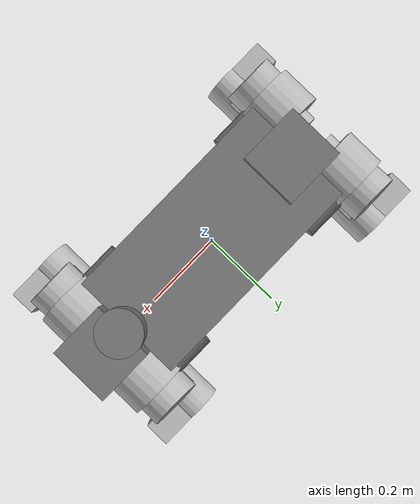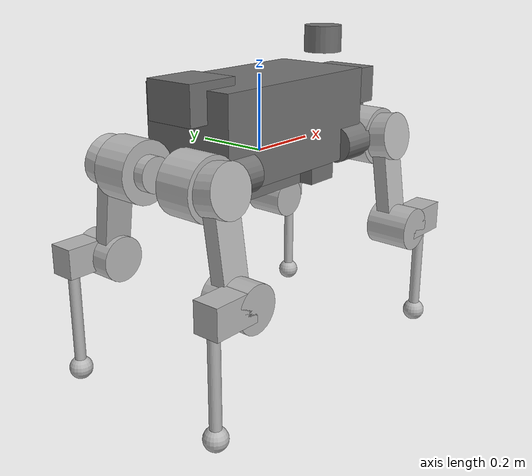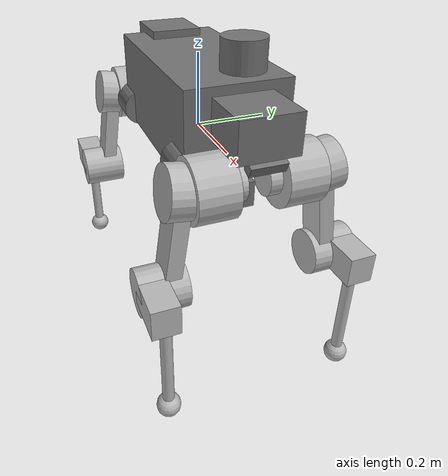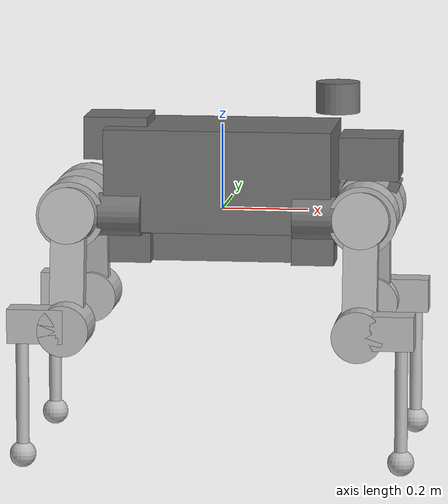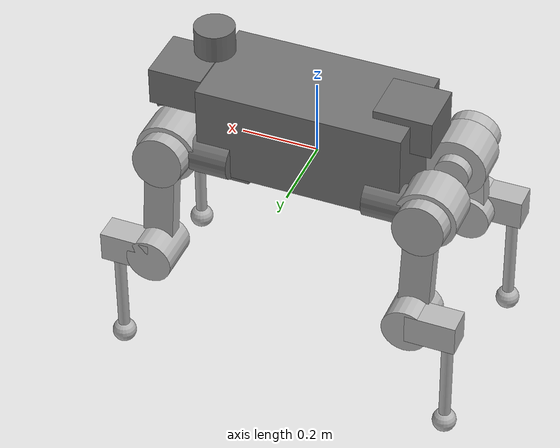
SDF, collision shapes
<sdf version="1.6">
  <model name="cerberus_anymal_b_sensor_config_1">
    <link name="base">
      <pose>0 0 0 0 -0 0</pose>
      <gravity>1</gravity>
      <velocity_decay/>
      <inertial>
        <pose>-0.001799 -0.001412 0.050337 0 -0 0</pose>
        <mass>23.32578</mass>
        <inertia>
          <ixx>0.30242793077</ixx>
          <ixy>-0.00184980716</ixy>
          <ixz>-0.00398797474</ixz>
          <iyy>0.88931002497</iyy>
          <iyz>-0.00192099149</iyz>
          <izz>0.86742722698</izz>
        </inertia>
      </inertial>
      <collision name="base_collision">
        <pose>0 0 0.08 0 -0 0</pose>
        <geometry>
          <box>
            <size>0.531 0.27 0.24</size>
          </box>
        </geometry>
      </collision>
      <collision name="base_collision_1">
        <pose>0.227 0.116 0 3.14159 1.57079 3.14159</pose>
        <geometry>
          <cylinder>
            <length>0.1</length>
            <radius>0.05</radius>
          </cylinder>
        </geometry>
      </collision>
      <collision name="base_collision_2">
        <pose>0.227 -0.116 0 3.14159 1.57079 3.14159</pose>
        <geometry>
          <cylinder>
            <length>0.1</length>
            <radius>0.05</radius>
          </cylinder>
        </geometry>
      </collision>
      <collision name="base_collision_3">
        <pose>-0.227 0.116 0 3.14159 1.57079 3.14159</pose>
        <geometry>
          <cylinder>
            <length>0.1</length>
            <radius>0.05</radius>
          </cylinder>
        </geometry>
      </collision>
      <collision name="base_collision_4">
        <pose>-0.227 -0.116 0 3.14159 1.57079 3.14159</pose>
        <geometry>
          <cylinder>
            <length>0.1</length>
            <radius>0.05</radius>
          </cylinder>
        </geometry>
      </collision>
      <collision name="base_collision_5">
        <pose>0.2155 0 -0.09 0 -0 0</pose>
        <geometry>
          <box>
            <size>0.1 0.1 0.07</size>
          </box>
        </geometry>
      </collision>
      <collision name="base_collision_6">
        <pose>-0.2155 0 -0.09 0 -0 0</pose>
        <geometry>
          <box>
            <size>0.1 0.1 0.07</size>
          </box>
        </geometry>
      </collision>
      <collision name="base_collision_7">
        <pose>0 0 -0.09 0 -0 0</pose>
        <geometry>
          <box>
            <size>0.531 0.02 0.07</size>
          </box>
        </geometry>
      </collision>
      <collision name="base_fixed_joint_lump__jetson_case_collision_8">
        <pose>-0.245 0 0.171 0 0 -1.5708</pose>
        <geometry>
          <box>
            <size>0.14 0.15 0.1</size>
          </box>
        </geometry>
      </collision>
      <collision name="base_fixed_joint_lump__sensor_head_collision_9">
        <pose>0.3482 0 0.131624 0 -0 0</pose>
        <geometry>
          <box>
            <size>0.14 0.15 0.1</size>
          </box>
        </geometry>
      </collision>
      <collision name="base_fixed_joint_lump__downward_realsense_camera_collision_10">
        <pose>0.405017 -0.000105 0.06461 -0.009501 0.382227 0</pose>
        <geometry>
          <box>
            <size>0.025 0.089 0.025</size>
          </box>
        </geometry>
      </collision>
      <collision name="base_fixed_joint_lump__velodyne_axis_aligned_collision_11">
        <pose>0.27 0 0.2676 0 -0 0</pose>
        <geometry>
          <cylinder>
            <length>0.0717</length>
            <radius>0.0516</radius>
          </cylinder>
        </geometry>
      </collision>
      <visual name="base_visual">
        <pose>0 0 0 0 -0 0</pose>
        <geometry>
          <mesh>
            <scale>0.001 0.001 0.001</scale>
            <uri>meshes/anymal_base.dae</uri>
          </mesh>
        </geometry>
      </visual>
      <visual name="base_fixed_joint_lump__jetson_case_visual_1">
        <pose>-0.245 0 0.201 0 0 -1.5708</pose>
        <geometry>
          <mesh>
            <scale>0.001 0.001 0.001</scale>
            <uri>meshes/darpa_jetson_back.stl</uri>
          </mesh>
        </geometry>
        <material>
          <ambient>0.8 0.8 0.8 1</ambient>
          <diffuse>0.45 0.45 0.45 1</diffuse>
          <specular>0.8 0.8 0.8 1.0</specular>
        </material>
      </visual>
      <visual name="base_fixed_joint_lump__sensor_head_visual_2">
        <pose>0.3482 0 0.161624 0 -0 0</pose>
        <geometry>
          <mesh>
            <scale>0.001 0.001 0.001</scale>
            <uri>meshes/darpa_head_1.stl</uri>
          </mesh>
        </geometry>
        <material>
          <ambient>0.8 0.8 0.8 1</ambient>
          <diffuse>0.45 0.45 0.45 1</diffuse>
          <specular>0.8 0.8 0.8 1.0</specular>
        </material>
      </visual>
      <visual name="base_fixed_joint_lump__downward_realsense_camera_visual_3">
        <pose>0.387757 -0.000224 0.057675 -0.009501 0.382227 0</pose>
        <geometry>
          <mesh>
            <scale>0.001 0.001 0.001</scale>
            <uri>meshes/realsense_d435.dae</uri>
          </mesh>
        </geometry>
      </visual>
      <visual name="base_fixed_joint_lump__velodyne_axis_aligned_visual_4">
        <pose>0.27 0 0.2299 0 -0 0</pose>
        <geometry>
          <mesh>
            <scale>1 1 1</scale>
            <uri>meshes/VLP16_base_1.dae</uri>
          </mesh>
        </geometry>
      </visual>
      <visual name="base_fixed_joint_lump__velodyne_axis_aligned_visual_5">
        <pose>0.27 0 0.2299 0 -0 0</pose>
        <geometry>
          <mesh>
            <scale>1 1 1</scale>
            <uri>meshes/VLP16_base_2.dae</uri>
          </mesh>
        </geometry>
      </visual>
      <visual name="base_fixed_joint_lump__velodyne_visual_6">
        <pose>0.27 0 0.2299 0 -0 0</pose>
        <geometry>
          <mesh>
            <scale>1 1 1</scale>
            <uri>meshes/VLP16_scan.dae</uri>
          </mesh>
        </geometry>
      </visual>
      <visual name="base_fixed_joint_lump__light_back_left_visual_7">
        <pose>-0.206 0.12 0.14 3.14159 1.57079 1.5692</pose>
        <geometry>
          <cylinder>
            <length>0.005</length>
            <radius>0.019</radius>
          </cylinder>
        </geometry>
      </visual>
      <visual name="base_fixed_joint_lump__light_back_right_visual_8">
        <pose>-0.206 -0.12 0.14 3.14159 1.57079 -1.57239</pose>
        <geometry>
          <cylinder>
            <length>0.005</length>
            <radius>0.019</radius>
          </cylinder>
        </geometry>
      </visual>
      <visual name="base_fixed_joint_lump__light_front_left_visual_9">
        <pose>0.305 0.045 0.33 -3.14159 1.57079 0.436332</pose>
        <geometry>
          <cylinder>
            <length>0.005</length>
            <radius>0.019</radius>
          </cylinder>
        </geometry>
      </visual>
      <visual name="base_fixed_joint_lump__light_front_right_visual_10">
        <pose>0.305 -0.045 0.33 3.14159 1.57079 -0.436332</pose>
        <geometry>
          <cylinder>
            <length>0.005</length>
            <radius>0.019</radius>
          </cylinder>
        </geometry>
      </visual>

      <sensor name="imu_sensor" type="imu">
        <always_on>1</always_on>
        <update_rate>400</update_rate>
        <imu>
                    <enable_orientation>0</enable_orientation>
                    <angular_velocity>
                        <x>
                            <noise type="gaussian">
                                <mean>0</mean>
                                <stddev>0.009</stddev>
                                <bias_mean>0.00075</bias_mean>
                                <bias_stddev>0.005</bias_stddev>
                                <dynamic_bias_stddev>0.00002</dynamic_bias_stddev>
                                <dynamic_bias_correlation_time>400.0</dynamic_bias_correlation_time>
                                <precision>0.00025</precision>
                            </noise>
                        </x>
                        <y>
                            <noise type="gaussian">
                                <mean>0</mean>
                                <stddev>0.009</stddev>
                                <bias_mean>0.00075</bias_mean>
                                <bias_stddev>0.005</bias_stddev>
                                <dynamic_bias_stddev>0.00002</dynamic_bias_stddev>
                                <dynamic_bias_correlation_time>400.0</dynamic_bias_correlation_time>
                                <precision>0.00025</precision>
                            </noise>
                        </y>
                        <z>
                            <noise type="gaussian">
                                <mean>0</mean>
                                <stddev>0.009</stddev>
                                <bias_mean>0.00075</bias_mean>
                                <bias_stddev>0.005</bias_stddev>
                                <dynamic_bias_stddev>0.00002</dynamic_bias_stddev>
                                <dynamic_bias_correlation_time>400.0</dynamic_bias_correlation_time>
                                <precision>0.00025</precision>
                            </noise>
                        </z>
                    </angular_velocity>
                    <linear_acceleration>
                        <x>
                            <noise type="gaussian">
                                <mean>0</mean>
                                <stddev>0.021</stddev>
                                <bias_mean>0.05</bias_mean>
                                <bias_stddev>0.0075</bias_stddev>
                                <dynamic_bias_stddev>0.000375</dynamic_bias_stddev>
                                <dynamic_bias_correlation_time>175.0</dynamic_bias_correlation_time>
                                <precision>0.005</precision>
                            </noise>
                        </x>
                        <y>
                            <noise type="gaussian">
                                <mean>0</mean>
                                <stddev>0.021</stddev>
                                <bias_mean>0.05</bias_mean>
                                <bias_stddev>0.0075</bias_stddev>
                                <dynamic_bias_stddev>0.000375</dynamic_bias_stddev>
                                <dynamic_bias_correlation_time>175.0</dynamic_bias_correlation_time>
                                <precision>0.005</precision>
                            </noise>
                        </y>
                        <z>
                            <noise type="gaussian">
                                <mean>0</mean>
                                <stddev>0.021</stddev>
                                <bias_mean>0.05</bias_mean>
                                <bias_stddev>0.0075</bias_stddev>
                                <dynamic_bias_stddev>0.000375</dynamic_bias_stddev>
                                <dynamic_bias_correlation_time>175.0</dynamic_bias_correlation_time>
                                <precision>0.005</precision>
                            </noise>
                        </z>
                    </linear_acceleration>
                </imu>
      </sensor>

      <sensor name="front_laser" type="gpu_lidar">
        <visualize>0</visualize>
        <update_rate>10</update_rate>
        <lidar>
          <scan>
            <horizontal>
              <samples>1800</samples>
              <resolution>1</resolution>
              <min_angle>-3.14159</min_angle>
              <max_angle>3.14159</max_angle>
            </horizontal>
            <vertical>
              <samples>16</samples>
              <resolution>1</resolution>
              <min_angle>-0.261799</min_angle>
              <max_angle>0.261799</max_angle>
            </vertical>
          </scan>
          <range>
            <min>0.05</min>
            <max>100</max>
            <resolution>0.01</resolution>
          </range>
          <noise>
            <type>gaussian</type>
            <mean>0</mean>
            <stddev>0.01</stddev>
          </noise>
        </lidar>
        <pose frame="">0.27 0 0.2676 0 -0 0</pose>
      </sensor>

      <sensor name="downward_realsense" type="rgbd_camera">
        <camera name="camera_down">
            <horizontal_fov>1.0472</horizontal_fov>
            <lens>
                <intrinsics>
                    <!-- fx = fy = width / ( 2 * tan (hfov / 2 ) ) -->
                    <fx>277.1</fx>
                    <fy>277.1</fy>
                    <!-- cx = ( width + 1 ) / 2 -->
                    <cx>160.5</cx>
                    <!-- cy = ( height + 1 ) / 2 -->
                    <cy>120.5</cy>
                    <s>0</s>
                </intrinsics>
            </lens>
            <distortion>
                <k1>0.0</k1>
                <k2>0.0</k2>
                <k3>0.0</k3>
                <p1>0.0</p1>
                <p2>0.0</p2>
                <center>0.5 0.5</center>
            </distortion>
            <image>
                <width>320</width>
                <height>240</height>
                <format>R8G8B8</format>
            </image>
            <clip>
                <near>0.01</near>
                <far>300</far>
            </clip>
            <depth_camera>
              <clip>
                <near>0.1</near>
                <far>10</far>
              </clip>
            </depth_camera>
            <noise>
                <type>gaussian</type>
                <mean>0</mean>
                <stddev>0.007</stddev>
            </noise>
        </camera>
        <always_on>1</always_on>
        <update_rate>10</update_rate>
        <visualize>0</visualize>
        <pose frame="">0.388757 -0.000224 0.0576 -0.009501 0.38227 0</pose>
      </sensor>

      <sensor name="camera_front" type="camera">
          <pose>0.42 0.02 0.161624 0 0 0</pose>
          <always_on>1</always_on>
          <update_rate>20</update_rate>
          <camera name="camera_front">
              <horizontal_fov>2</horizontal_fov>
              <lens>
                <intrinsics>
                  <fx>1108.952913</fx>
                  <fy>1110.658360</fy>
                  <cx>729.533992</cx>
                  <cy>544.985715</cy>
                  <s>1</s>
                </intrinsics>
              </lens>
              <distortion>
                  <k1>0.0</k1>
                  <k2>0.0</k2>
                  <k3>0.0</k3>
                  <p1>0.0</p1>
                  <p2>0.0</p2>
                  <center>0.5 0.5</center>
              </distortion>
              <image>
                <width>1440</width>
                <height>1080</height>
                <format>R8G8B8</format>
              </image>
              <clip>
                  <near>0.02</near>
                  <far>100</far>
              </clip>
              <noise>
                <type>gaussian</type>
                <mean>0</mean>
                <stddev>0.007</stddev>
              </noise>
          </camera>
      </sensor>

      <sensor name="camera_back_right" type="camera">
          <pose>-0.311374 -0.152675 0.136916 0 0 -1.5707963267948966</pose>
          <always_on>1</always_on>
          <update_rate>20</update_rate>
          <camera name="camera_back_right">
            <horizontal_fov>2</horizontal_fov>
            <lens>
              <intrinsics>
                <fx>1108.952913</fx>
                <fy>1110.658360</fy>
                <cx>729.533992</cx>
                <cy>544.985715</cy>
                <s>1</s>
              </intrinsics>
            </lens>
            <distortion>
                <k1>0.0</k1>
                <k2>0.0</k2>
                <k3>0.0</k3>
                <p1>0.0</p1>
                <p2>0.0</p2>
                <center>0.5 0.5</center>
            </distortion>
            <image>
              <width>1440</width>
              <height>1080</height>
              <format>R8G8B8</format>
            </image>
            <clip>
                <near>0.02</near>
                <far>100</far>
            </clip>
            <noise>
              <type>gaussian</type>
              <mean>0</mean>
              <stddev>0.007</stddev>
            </noise>
          </camera>
      </sensor>

      <sensor name="camera_back_left" type="camera">
          <pose>-0.310417 0.158145 0.139186 0 0 1.5707963267948966</pose>
          <always_on>1</always_on>
          <update_rate>20</update_rate>
          <camera name="camera_back_left">
            <horizontal_fov>2</horizontal_fov>
            <lens>
              <intrinsics>
                <fx>1108.952913</fx>
                <fy>1110.658360</fy>
                <cx>729.533992</cx>
                <cy>544.985715</cy>
                <s>1</s>
              </intrinsics>
            </lens>
            <distortion>
                <k1>0.0</k1>
                <k2>0.0</k2>
                <k3>0.0</k3>
                <p1>0.0</p1>
                <p2>0.0</p2>
                <center>0.5 0.5</center>
            </distortion>
            <image>
              <width>1440</width>
              <height>1080</height>
              <format>R8G8B8</format>
            </image>
            <clip>
                <near>0.02</near>
                <far>100</far>
            </clip>
            <noise>
              <type>gaussian</type>
              <mean>0</mean>
              <stddev>0.007</stddev>
            </noise>
          </camera>
      </sensor>

      <light name="light_front_right" type="spot">
        <pose frame="">0.305 -0.045 0.33 3.14159 1.56859 -0.436332</pose>
        <attenuation>
          <range>50</range>
          <linear>0</linear>
          <constant>0.1</constant>
          <quadratic>0.0025</quadratic>
        </attenuation>
        <diffuse>0.8 0.8 0.5 1</diffuse>
        <specular>0.8 0.8 0.5 1</specular>
        <spot>
          <inner_angle>1.2</inner_angle>
          <outer_angle>1.3</outer_angle>
          <falloff>1</falloff>
        </spot>
        <direction>0 0 -1</direction>
      </light>

      <light name="light_front_left" type="spot">
        <pose frame="">0.305 0.045 0.33 3.14159 1.56859 0.436332</pose>
        <attenuation>
          <range>50</range>
          <linear>0</linear>
          <constant>0.1</constant>
          <quadratic>0.0025</quadratic>
        </attenuation>
        <diffuse>0.8 0.8 0.5 1</diffuse>
        <specular>0.8 0.8 0.5 1</specular>
        <spot>
          <inner_angle>1.2</inner_angle>
          <outer_angle>1.3</outer_angle>
          <falloff>1</falloff>
        </spot>
        <direction>0 0 -1</direction>
      </light>

      <light name="light_back_right" type="spot">
        <pose frame="">-0.206 -0.12 0.14 3.14159 1.56859 -1.5707963267948966</pose>
        <attenuation>
          <range>50</range>
          <linear>0</linear>
          <constant>0.1</constant>
          <quadratic>0.0025</quadratic>
        </attenuation>
        <diffuse>0.8 0.8 0.5 1</diffuse>
        <specular>0.8 0.8 0.5 1</specular>
        <spot>
          <inner_angle>1.2</inner_angle>
          <outer_angle>1.3</outer_angle>
          <falloff>1</falloff>
        </spot>
        <direction>0 0 -1</direction>
      </light>

      <light name="light_back_left" type="spot">
        <pose frame="">-0.206 0.12 0.14 3.14159 1.56859 1.5707963267948966</pose>
        <attenuation>
          <range>50</range>
          <linear>0</linear>
          <constant>0.1</constant>
          <quadratic>0.0025</quadratic>
        </attenuation>
        <diffuse>0.8 0.8 0.5 1</diffuse>
        <specular>0.8 0.8 0.5 1</specular>
        <spot>
          <inner_angle>1.2</inner_angle>
          <outer_angle>1.3</outer_angle>
          <falloff>1</falloff>
        </spot>
        <direction>0 0 -1</direction>
      </light>
    </link>
    <link name="LF_HIP">
      <pose>0.277 0.116 0 0 -0 0</pose>
      <gravity>1</gravity>
      <velocity_decay/>
      <inertial>
        <pose>0.064516 -0.003787 -0.000152 0 -0 0</pose>
        <mass>1.42462</mass>
        <inertia>
          <ixx>0.00243023</ixx>
          <ixy>-1.53024e-05</ixy>
          <ixz>-2.18191e-05</ixz>
          <iyy>0.00230257</iyy>
          <iyz>2.6473e-05</iyz>
          <izz>0.00198068</izz>
        </inertia>
      </inertial>
      <collision name="LF_HIP_collision">
        <pose>0.0635 -0.009 0 1.5708 -0 0</pose>
        <geometry>
          <cylinder>
            <length>0.1</length>
            <radius>0.08</radius>
          </cylinder>
        </geometry>
      </collision>
      <collision name="LF_HIP_collision_1">
        <pose>0.0635 -0.074 0 1.5708 -0 0</pose>
        <geometry>
          <cylinder>
            <length>0.03</length>
            <radius>0.045</radius>
          </cylinder>
        </geometry>
      </collision>
      <visual name="LF_HIP_visual">
        <pose>0 0 0 0 -0 0</pose>
        <geometry>
          <mesh>
            <scale>0.001 0.001 0.001</scale>
            <uri>meshes/anymal_hip_l.dae</uri>
          </mesh>
        </geometry>
      </visual>
    </link>
    <joint name="LF_HAA" type="revolute">
      <child>LF_HIP</child>
      <parent>base</parent>
      <axis>
        <xyz>1 0 0</xyz>
        <limit>
          <lower>-9.42</lower>
          <upper>9.42</upper>
          <effort>80</effort>
          <velocity>15</velocity>
        </limit>
        <dynamics>
          <damping>0</damping>
          <friction>0</friction>
          <spring_reference>0</spring_reference>
          <spring_stiffness>0</spring_stiffness>
        </dynamics>
        <use_parent_model_frame>0</use_parent_model_frame>
      </axis>
    </joint>
    <link name="LF_THIGH">
      <pose>0.3405 0.157 0 0 -0 0</pose>
      <gravity>1</gravity>
      <velocity_decay/>
      <inertial>
        <pose>-0.003898 0.054227 -0.214583 0 -0 0</pose>
        <mass>1.63498</mass>
        <inertia>
          <ixx>0.0120368</ixx>
          <ixy>6.76207e-05</ixy>
          <ixz>0.000287806</ixz>
          <iyy>0.0120644</iyy>
          <iyz>-0.0014061</iyz>
          <izz>0.00249423</izz>
        </inertia>
      </inertial>
      <collision name="LF_THIGH_collision">
        <pose>0 0.035 -0.125 0.145 -0 0</pose>
        <geometry>
          <box>
            <size>0.08 0.04 0.25</size>
          </box>
        </geometry>
      </collision>
      <collision name="LF_THIGH_collision_1">
        <pose>0 0.069 -0.25 1.5708 -0 0</pose>
        <geometry>
          <cylinder>
            <length>0.12</length>
            <radius>0.06</radius>
          </cylinder>
        </geometry>
      </collision>
      <collision name="LF_THIGH_collision_2">
        <pose>0 -0.005 0 1.7158 -0 0</pose>
        <geometry>
          <cylinder>
            <length>0.12</length>
            <radius>0.066</radius>
          </cylinder>
        </geometry>
      </collision>
      <visual name="LF_THIGH_visual">
        <pose>0 0 0 0 -0 0</pose>
        <geometry>
          <mesh>
            <scale>0.001 0.001 0.001</scale>
            <uri>meshes/anymal_thigh_l.dae</uri>
          </mesh>
        </geometry>
      </visual>
    </link>
    <joint name="LF_HFE" type="revolute">
      <child>LF_THIGH</child>
      <parent>LF_HIP</parent>
      <axis>
        <xyz>0 1 0</xyz>
        <limit>
          <lower>-9.42</lower>
          <upper>9.42</upper>
          <effort>80</effort>
          <velocity>15</velocity>
        </limit>
        <dynamics>
          <damping>0</damping>
          <friction>0</friction>
          <spring_reference>0</spring_reference>
          <spring_stiffness>0</spring_stiffness>
        </dynamics>
        <use_parent_model_frame>0</use_parent_model_frame>
      </axis>
    </joint>
    <link name="LF_SHANK">
      <pose>0.3405 0.266 -0.25 0 -0 0</pose>
      <gravity>1</gravity>
      <velocity_decay/>
      <inertial>
        <pose>0.058733 -0.010824 -0.098064 0 -0 0</pose>
        <mass>0.347375</mass>
        <inertia>
          <ixx>0.00685813</ixx>
          <ixy>3.2229e-05</ixy>
          <ixz>0.00142869</ixz>
          <iyy>0.00770431</iyy>
          <iyz>-0.000316237</iyz>
          <izz>0.00101942</izz>
        </inertia>
      </inertial>
      <collision name="LF_SHANK_collision">
        <pose>0.065 -0.015 0.01 3.14159 1.57079 3.14159</pose>
        <geometry>
          <box>
            <size>0.08 0.07 0.13</size>
          </box>
        </geometry>
      </collision>
      <collision name="LF_SHANK_fixed_joint_lump__LF_ADAPTER_collision_1">
        <pose>0.1 -0.02 -0.160625 0 -0 0</pose>
        <geometry>
          <cylinder>
            <length>0.32125</length>
            <radius>0.015</radius>
          </cylinder>
        </geometry>
      </collision>
      <collision name="LF_SHANK_fixed_joint_lump__LF_FOOT_collision_2">
        <pose>0.1 -0.02 -0.298 0 -0 0</pose>
        <geometry>
          <sphere>
            <radius>0.031</radius>
          </sphere>
        </geometry>
        <surface>
          <contact>
            <ode>
              <kp>1e+06</kp>
              <kd>100</kd>
            </ode>
          </contact>
          <friction>
            <ode>
              <mu>0.8</mu>
              <mu2>0.8</mu2>
            </ode>
          </friction>
        </surface>
      </collision>
      <visual name="LF_SHANK_visual">
        <pose>0 0 0 0 -0 0</pose>
        <geometry>
          <mesh>
            <scale>0.001 0.001 0.001</scale>
            <uri>meshes/anymal_shank_l.dae</uri>
          </mesh>
        </geometry>
      </visual>
      <visual name="LF_SHANK_fixed_joint_lump__LF_ADAPTER_visual_1">
        <pose>0.1 -0.02 0.032 0 -0 0</pose>
        <geometry>
          <mesh>
            <scale>0.001 0.001 0.001</scale>
            <uri>meshes/anymal_foot.dae</uri>
          </mesh>
        </geometry>
      </visual>
    </link>
    <joint name="LF_KFE" type="revolute">
      <child>LF_SHANK</child>
      <parent>LF_THIGH</parent>
      <axis>
        <xyz>0 1 0</xyz>
        <limit>
          <lower>-9.42</lower>
          <upper>9.42</upper>
          <effort>80</effort>
          <velocity>15</velocity>
        </limit>
        <dynamics>
          <damping>0</damping>
          <friction>0</friction>
          <spring_reference>0</spring_reference>
          <spring_stiffness>0</spring_stiffness>
        </dynamics>
        <use_parent_model_frame>0</use_parent_model_frame>
      </axis>
    </joint>
    <link name="LH_HIP">
      <pose>-0.277 0.116 0 0 -0 0</pose>
      <gravity>1</gravity>
      <velocity_decay/>
      <inertial>
        <pose>-0.064516 -0.003787 -0.000152 0 -0 0</pose>
        <mass>1.42462</mass>
        <inertia>
          <ixx>0.00243023</ixx>
          <ixy>1.53024e-05</ixy>
          <ixz>2.18191e-05</ixz>
          <iyy>0.00230257</iyy>
          <iyz>2.6473e-05</iyz>
          <izz>0.00198068</izz>
        </inertia>
      </inertial>
      <collision name="LH_HIP_collision">
        <pose>-0.0635 -0.009 0 -1.5708 0 0</pose>
        <geometry>
          <cylinder>
            <length>0.1</length>
            <radius>0.08</radius>
          </cylinder>
        </geometry>
      </collision>
      <collision name="LH_HIP_collision_1">
        <pose>-0.0635 -0.074 0 -1.5708 0 0</pose>
        <geometry>
          <cylinder>
            <length>0.03</length>
            <radius>0.045</radius>
          </cylinder>
        </geometry>
      </collision>
      <visual name="LH_HIP_visual">
        <pose>0 0 0 0 -0 3.14159</pose>
        <geometry>
          <mesh>
            <scale>0.001 0.001 0.001</scale>
            <uri>meshes/anymal_hip_r.dae</uri>
          </mesh>
        </geometry>
      </visual>
    </link>
    <joint name="LH_HAA" type="revolute">
      <child>LH_HIP</child>
      <parent>base</parent>
      <axis>
        <xyz>1 0 0</xyz>
        <limit>
          <lower>-9.42</lower>
          <upper>9.42</upper>
          <effort>80</effort>
          <velocity>15</velocity>
        </limit>
        <dynamics>
          <damping>0</damping>
          <friction>0</friction>
          <spring_reference>0</spring_reference>
          <spring_stiffness>0</spring_stiffness>
        </dynamics>
        <use_parent_model_frame>0</use_parent_model_frame>
      </axis>
    </joint>
    <link name="LH_THIGH">
      <pose>-0.3405 0.157 0 0 -0 0</pose>
      <gravity>1</gravity>
      <velocity_decay/>
      <inertial>
        <pose>0.003898 0.054227 -0.214583 0 -0 0</pose>
        <mass>1.63498</mass>
        <inertia>
          <ixx>0.0120368</ixx>
          <ixy>-6.76207e-05</ixy>
          <ixz>-0.000287806</ixz>
          <iyy>0.0120644</iyy>
          <iyz>-0.0014061</iyz>
          <izz>0.00249423</izz>
        </inertia>
      </inertial>
      <collision name="LH_THIGH_collision">
        <pose>0 0.035 -0.125 0.145 -0 0</pose>
        <geometry>
          <box>
            <size>0.08 0.04 0.25</size>
          </box>
        </geometry>
      </collision>
      <collision name="LH_THIGH_collision_1">
        <pose>0 0.069 -0.25 1.5708 -0 0</pose>
        <geometry>
          <cylinder>
            <length>0.12</length>
            <radius>0.06</radius>
          </cylinder>
        </geometry>
      </collision>
      <collision name="LH_THIGH_collision_2">
        <pose>0 -0.005 0 1.7158 -0 0</pose>
        <geometry>
          <cylinder>
            <length>0.12</length>
            <radius>0.066</radius>
          </cylinder>
        </geometry>
      </collision>
      <visual name="LH_THIGH_visual">
        <pose>0 0 0 0 -0 3.14159</pose>
        <geometry>
          <mesh>
            <scale>0.001 0.001 0.001</scale>
            <uri>meshes/anymal_thigh_r.dae</uri>
          </mesh>
        </geometry>
      </visual>
    </link>
    <joint name="LH_HFE" type="revolute">
      <child>LH_THIGH</child>
      <parent>LH_HIP</parent>
      <axis>
        <xyz>0 1 0</xyz>
        <limit>
          <lower>-9.42</lower>
          <upper>9.42</upper>
          <effort>80</effort>
          <velocity>15</velocity>
        </limit>
        <dynamics>
          <damping>0</damping>
          <friction>0</friction>
          <spring_reference>0</spring_reference>
          <spring_stiffness>0</spring_stiffness>
        </dynamics>
        <use_parent_model_frame>0</use_parent_model_frame>
      </axis>
    </joint>
    <link name="LH_SHANK">
      <pose>-0.3405 0.266 -0.25 0 -0 0</pose>
      <gravity>1</gravity>
      <velocity_decay/>
      <inertial>
        <pose>-0.058733 -0.010824 -0.098064 0 -0 0</pose>
        <mass>0.347375</mass>
        <inertia>
          <ixx>0.00685813</ixx>
          <ixy>-3.2229e-05</ixy>
          <ixz>-0.00142869</ixz>
          <iyy>0.00770431</iyy>
          <iyz>-0.000316237</iyz>
          <izz>0.00101942</izz>
        </inertia>
      </inertial>
      <collision name="LH_SHANK_collision">
        <pose>-0.065 -0.015 0.01 3.14159 1.57079 3.14159</pose>
        <geometry>
          <box>
            <size>0.08 0.07 0.13</size>
          </box>
        </geometry>
      </collision>
      <collision name="LH_SHANK_fixed_joint_lump__LH_ADAPTER_collision_1">
        <pose>-0.1 -0.02 -0.160625 0 -0 0</pose>
        <geometry>
          <cylinder>
            <length>0.32125</length>
            <radius>0.015</radius>
          </cylinder>
        </geometry>
      </collision>
      <collision name="LH_SHANK_fixed_joint_lump__LH_FOOT_collision_2">
        <pose>-0.1 -0.02 -0.298 0 -0 0</pose>
        <geometry>
          <sphere>
            <radius>0.031</radius>
          </sphere>
        </geometry>
        <surface>
          <contact>
            <ode>
              <kp>1e+06</kp>
              <kd>100</kd>
            </ode>
          </contact>
          <friction>
            <ode>
              <mu>0.8</mu>
              <mu2>0.8</mu2>
            </ode>
          </friction>
        </surface>
      </collision>
      <visual name="LH_SHANK_visual">
        <pose>0 0 0 0 -0 3.14159</pose>
        <geometry>
          <mesh>
            <scale>0.001 0.001 0.001</scale>
            <uri>meshes/anymal_shank_r.dae</uri>
          </mesh>
        </geometry>
      </visual>
      <visual name="LH_SHANK_fixed_joint_lump__LH_ADAPTER_visual_1">
        <pose>-0.1 -0.02 0.032 0 -0 3.14159</pose>
        <geometry>
          <mesh>
            <scale>0.001 0.001 0.001</scale>
            <uri>meshes/anymal_foot.dae</uri>
          </mesh>
        </geometry>
      </visual>
    </link>
    <joint name="LH_KFE" type="revolute">
      <child>LH_SHANK</child>
      <parent>LH_THIGH</parent>
      <axis>
        <xyz>0 1 0</xyz>
        <limit>
          <lower>-9.42</lower>
          <upper>9.42</upper>
          <effort>80</effort>
          <velocity>15</velocity>
        </limit>
        <dynamics>
          <damping>0</damping>
          <friction>0</friction>
          <spring_reference>0</spring_reference>
          <spring_stiffness>0</spring_stiffness>
        </dynamics>
        <use_parent_model_frame>0</use_parent_model_frame>
      </axis>
    </joint>
    <link name="RF_HIP">
      <pose>0.277 -0.116 0 0 -0 0</pose>
      <gravity>1</gravity>
      <velocity_decay/>
      <inertial>
        <pose>0.064516 0.003787 -0.000152 0 -0 0</pose>
        <mass>1.42462</mass>
        <inertia>
          <ixx>0.00243023</ixx>
          <ixy>1.53024e-05</ixy>
          <ixz>-2.18191e-05</ixz>
          <iyy>0.00230257</iyy>
          <iyz>-2.6473e-05</iyz>
          <izz>0.00198068</izz>
        </inertia>
      </inertial>
      <collision name="RF_HIP_collision">
        <pose>0.0635 0.009 0 1.5708 -0 0</pose>
        <geometry>
          <cylinder>
            <length>0.1</length>
            <radius>0.08</radius>
          </cylinder>
        </geometry>
      </collision>
      <collision name="RF_HIP_collision_1">
        <pose>0.0635 0.074 0 1.5708 -0 0</pose>
        <geometry>
          <cylinder>
            <length>0.03</length>
            <radius>0.045</radius>
          </cylinder>
        </geometry>
      </collision>
      <visual name="RF_HIP_visual">
        <pose>0 0 0 0 -0 0</pose>
        <geometry>
          <mesh>
            <scale>0.001 0.001 0.001</scale>
            <uri>meshes/anymal_hip_r.dae</uri>
          </mesh>
        </geometry>
      </visual>
    </link>
    <joint name="RF_HAA" type="revolute">
      <child>RF_HIP</child>
      <parent>base</parent>
      <axis>
        <xyz>1 0 0</xyz>
        <limit>
          <lower>-9.42</lower>
          <upper>9.42</upper>
          <effort>80</effort>
          <velocity>15</velocity>
        </limit>
        <dynamics>
          <damping>0</damping>
          <friction>0</friction>
          <spring_reference>0</spring_reference>
          <spring_stiffness>0</spring_stiffness>
        </dynamics>
        <use_parent_model_frame>0</use_parent_model_frame>
      </axis>
    </joint>
    <link name="RF_THIGH">
      <pose>0.3405 -0.157 0 0 -0 0</pose>
      <gravity>1</gravity>
      <velocity_decay/>
      <inertial>
        <pose>-0.003898 -0.054227 -0.214583 0 -0 0</pose>
        <mass>1.63498</mass>
        <inertia>
          <ixx>0.0120368</ixx>
          <ixy>-6.76207e-05</ixy>
          <ixz>0.000287806</ixz>
          <iyy>0.0120644</iyy>
          <iyz>0.0014061</iyz>
          <izz>0.00249423</izz>
        </inertia>
      </inertial>
      <collision name="RF_THIGH_collision">
        <pose>0 -0.035 -0.125 -0.145 0 0</pose>
        <geometry>
          <box>
            <size>0.08 0.04 0.25</size>
          </box>
        </geometry>
      </collision>
      <collision name="RF_THIGH_collision_1">
        <pose>0 -0.069 -0.25 1.5708 -0 0</pose>
        <geometry>
          <cylinder>
            <length>0.12</length>
            <radius>0.06</radius>
          </cylinder>
        </geometry>
      </collision>
      <collision name="RF_THIGH_collision_2">
        <pose>0 0.005 0 -1.7158 0 0</pose>
        <geometry>
          <cylinder>
            <length>0.12</length>
            <radius>0.066</radius>
          </cylinder>
        </geometry>
      </collision>
      <visual name="RF_THIGH_visual">
        <pose>0 0 0 0 -0 0</pose>
        <geometry>
          <mesh>
            <scale>0.001 0.001 0.001</scale>
            <uri>meshes/anymal_thigh_r.dae</uri>
          </mesh>
        </geometry>
      </visual>
    </link>
    <joint name="RF_HFE" type="revolute">
      <child>RF_THIGH</child>
      <parent>RF_HIP</parent>
      <axis>
        <xyz>0 1 0</xyz>
        <limit>
          <lower>-9.42</lower>
          <upper>9.42</upper>
          <effort>80</effort>
          <velocity>15</velocity>
        </limit>
        <dynamics>
          <damping>0</damping>
          <friction>0</friction>
          <spring_reference>0</spring_reference>
          <spring_stiffness>0</spring_stiffness>
        </dynamics>
        <use_parent_model_frame>0</use_parent_model_frame>
      </axis>
    </joint>
    <link name="RF_SHANK">
      <pose>0.3405 -0.266 -0.25 0 -0 0</pose>
      <gravity>1</gravity>
      <velocity_decay/>
      <inertial>
        <pose>0.058733 0.010824 -0.098064 0 -0 0</pose>
        <mass>0.347375</mass>
        <inertia>
          <ixx>0.00685813</ixx>
          <ixy>-3.2229e-05</ixy>
          <ixz>0.00142869</ixz>
          <iyy>0.00770431</iyy>
          <iyz>0.000316237</iyz>
          <izz>0.00101942</izz>
        </inertia>
      </inertial>
      <collision name="RF_SHANK_collision">
        <pose>0.065 0.015 0.01 3.14159 1.57079 3.14159</pose>
        <geometry>
          <box>
            <size>0.08 0.07 0.13</size>
          </box>
        </geometry>
      </collision>
      <collision name="RF_SHANK_fixed_joint_lump__RF_ADAPTER_collision_1">
        <pose>0.1 0.02 -0.160625 0 -0 0</pose>
        <geometry>
          <cylinder>
            <length>0.32125</length>
            <radius>0.015</radius>
          </cylinder>
        </geometry>
      </collision>
      <collision name="RF_SHANK_fixed_joint_lump__RF_FOOT_collision_2">
        <pose>0.1 0.02 -0.298 0 -0 0</pose>
        <geometry>
          <sphere>
            <radius>0.031</radius>
          </sphere>
        </geometry>
        <surface>
          <contact>
            <ode>
              <kp>1e+06</kp>
              <kd>100</kd>
            </ode>
          </contact>
          <friction>
            <ode>
              <mu>0.8</mu>
              <mu2>0.8</mu2>
            </ode>
          </friction>
        </surface>
      </collision>
      <visual name="RF_SHANK_visual">
        <pose>0 0 0 0 -0 0</pose>
        <geometry>
          <mesh>
            <scale>0.001 0.001 0.001</scale>
            <uri>meshes/anymal_shank_r.dae</uri>
          </mesh>
        </geometry>
      </visual>
      <visual name="RF_SHANK_fixed_joint_lump__RF_ADAPTER_visual_1">
        <pose>0.1 0.02 0.032 0 -0 0</pose>
        <geometry>
          <mesh>
            <scale>0.001 0.001 0.001</scale>
            <uri>meshes/anymal_foot.dae</uri>
          </mesh>
        </geometry>
      </visual>
    </link>
    <joint name="RF_KFE" type="revolute">
      <child>RF_SHANK</child>
      <parent>RF_THIGH</parent>
      <axis>
        <xyz>0 1 0</xyz>
        <limit>
          <lower>-9.42</lower>
          <upper>9.42</upper>
          <effort>80</effort>
          <velocity>15</velocity>
        </limit>
        <dynamics>
          <damping>0</damping>
          <friction>0</friction>
          <spring_reference>0</spring_reference>
          <spring_stiffness>0</spring_stiffness>
        </dynamics>
        <use_parent_model_frame>0</use_parent_model_frame>
      </axis>
    </joint>
    <link name="RH_HIP">
      <pose>-0.277 -0.116 0 0 -0 0</pose>
      <gravity>1</gravity>
      <velocity_decay/>
      <inertial>
        <pose>-0.064516 0.003787 -0.000152 0 -0 0</pose>
        <mass>1.42462</mass>
        <inertia>
          <ixx>0.00243023</ixx>
          <ixy>-1.53024e-05</ixy>
          <ixz>2.18191e-05</ixz>
          <iyy>0.00230257</iyy>
          <iyz>-2.6473e-05</iyz>
          <izz>0.00198068</izz>
        </inertia>
      </inertial>
      <collision name="RH_HIP_collision">
        <pose>-0.0635 0.009 0 -1.5708 0 0</pose>
        <geometry>
          <cylinder>
            <length>0.1</length>
            <radius>0.08</radius>
          </cylinder>
        </geometry>
      </collision>
      <collision name="RH_HIP_collision_1">
        <pose>-0.0635 0.074 0 -1.5708 0 0</pose>
        <geometry>
          <cylinder>
            <length>0.03</length>
            <radius>0.045</radius>
          </cylinder>
        </geometry>
      </collision>
      <visual name="RH_HIP_visual">
        <pose>0 0 0 0 -0 3.14159</pose>
        <geometry>
          <mesh>
            <scale>0.001 0.001 0.001</scale>
            <uri>meshes/anymal_hip_l.dae</uri>
          </mesh>
        </geometry>
      </visual>
    </link>
    <joint name="RH_HAA" type="revolute">
      <child>RH_HIP</child>
      <parent>base</parent>
      <axis>
        <xyz>1 0 0</xyz>
        <limit>
          <lower>-9.42</lower>
          <upper>9.42</upper>
          <effort>80</effort>
          <velocity>15</velocity>
        </limit>
        <dynamics>
          <damping>0</damping>
          <friction>0</friction>
          <spring_reference>0</spring_reference>
          <spring_stiffness>0</spring_stiffness>
        </dynamics>
        <use_parent_model_frame>0</use_parent_model_frame>
      </axis>
    </joint>
    <link name="RH_THIGH">
      <pose>-0.3405 -0.157 0 0 -0 0</pose>
      <gravity>1</gravity>
      <velocity_decay/>
      <inertial>
        <pose>0.003898 -0.054227 -0.214583 0 -0 0</pose>
        <mass>1.63498</mass>
        <inertia>
          <ixx>0.0120368</ixx>
          <ixy>6.76207e-05</ixy>
          <ixz>-0.000287806</ixz>
          <iyy>0.0120644</iyy>
          <iyz>0.0014061</iyz>
          <izz>0.00249423</izz>
        </inertia>
      </inertial>
      <collision name="RH_THIGH_collision">
        <pose>0 -0.035 -0.125 -0.145 0 0</pose>
        <geometry>
          <box>
            <size>0.08 0.04 0.25</size>
          </box>
        </geometry>
      </collision>
      <collision name="RH_THIGH_collision_1">
        <pose>0 -0.069 -0.25 1.5708 -0 0</pose>
        <geometry>
          <cylinder>
            <length>0.12</length>
            <radius>0.06</radius>
          </cylinder>
        </geometry>
      </collision>
      <collision name="RH_THIGH_collision_2">
        <pose>0 0.005 0 -1.7158 0 0</pose>
        <geometry>
          <cylinder>
            <length>0.12</length>
            <radius>0.066</radius>
          </cylinder>
        </geometry>
      </collision>
      <visual name="RH_THIGH_visual">
        <pose>0 0 0 0 -0 3.14159</pose>
        <geometry>
          <mesh>
            <scale>0.001 0.001 0.001</scale>
            <uri>meshes/anymal_thigh_l.dae</uri>
          </mesh>
        </geometry>
      </visual>
    </link>
    <joint name="RH_HFE" type="revolute">
      <child>RH_THIGH</child>
      <parent>RH_HIP</parent>
      <axis>
        <xyz>0 1 0</xyz>
        <limit>
          <lower>-9.42</lower>
          <upper>9.42</upper>
          <effort>80</effort>
          <velocity>15</velocity>
        </limit>
        <dynamics>
          <damping>0</damping>
          <friction>0</friction>
          <spring_reference>0</spring_reference>
          <spring_stiffness>0</spring_stiffness>
        </dynamics>
        <use_parent_model_frame>0</use_parent_model_frame>
      </axis>
    </joint>
    <link name="RH_SHANK">
      <pose>-0.3405 -0.266 -0.25 0 -0 0</pose>
      <gravity>1</gravity>
      <velocity_decay/>
      <inertial>
        <pose>-0.058733 0.010824 -0.098064 0 -0 0</pose>
        <mass>0.347375</mass>
        <inertia>
          <ixx>0.00685813</ixx>
          <ixy>3.2229e-05</ixy>
          <ixz>-0.00142869</ixz>
          <iyy>0.00770431</iyy>
          <iyz>0.000316237</iyz>
          <izz>0.00101942</izz>
        </inertia>
      </inertial>
      <collision name="RH_SHANK_collision">
        <pose>-0.065 0.015 0.01 3.14159 1.57079 3.14159</pose>
        <geometry>
          <box>
            <size>0.08 0.07 0.13</size>
          </box>
        </geometry>
      </collision>
      <collision name="RH_SHANK_fixed_joint_lump__RH_ADAPTER_collision_1">
        <pose>-0.1 0.02 -0.160625 0 -0 0</pose>
        <geometry>
          <cylinder>
            <length>0.32125</length>
            <radius>0.015</radius>
          </cylinder>
        </geometry>
      </collision>
      <collision name="RH_SHANK_fixed_joint_lump__RH_FOOT_collision_2">
        <pose>-0.1 0.02 -0.298 0 -0 0</pose>
        <geometry>
          <sphere>
            <radius>0.031</radius>
          </sphere>
        </geometry>
        <surface>
          <contact>
            <ode>
              <kp>1e+06</kp>
              <kd>100</kd>
            </ode>
          </contact>
          <friction>
            <ode>
              <mu>0.8</mu>
              <mu2>0.8</mu2>
            </ode>
          </friction>
        </surface>
      </collision>
      <visual name="RH_SHANK_visual">
        <pose>0 0 0 0 -0 3.14159</pose>
        <geometry>
          <mesh>
            <scale>0.001 0.001 0.001</scale>
            <uri>meshes/anymal_shank_l.dae</uri>
          </mesh>
        </geometry>
      </visual>
      <visual name="RH_SHANK_fixed_joint_lump__RH_ADAPTER_visual_1">
        <pose>-0.1 0.02 0.032 0 -0 3.14159</pose>
        <geometry>
          <mesh>
            <scale>0.001 0.001 0.001</scale>
            <uri>meshes/anymal_foot.dae</uri>
          </mesh>
        </geometry>
      </visual>
    </link>
    <joint name="RH_KFE" type="revolute">
      <child>RH_SHANK</child>
      <parent>RH_THIGH</parent>
      <axis>
        <xyz>0 1 0</xyz>
        <limit>
          <lower>-9.42</lower>
          <upper>9.42</upper>
          <effort>80</effort>
          <velocity>15</velocity>
        </limit>
        <dynamics>
          <damping>0</damping>
          <friction>0</friction>
          <spring_reference>0</spring_reference>
          <spring_stiffness>0</spring_stiffness>
        </dynamics>
        <use_parent_model_frame>0</use_parent_model_frame>
      </axis>
    </joint>
    <static>0</static>
  </model>
</sdf>
